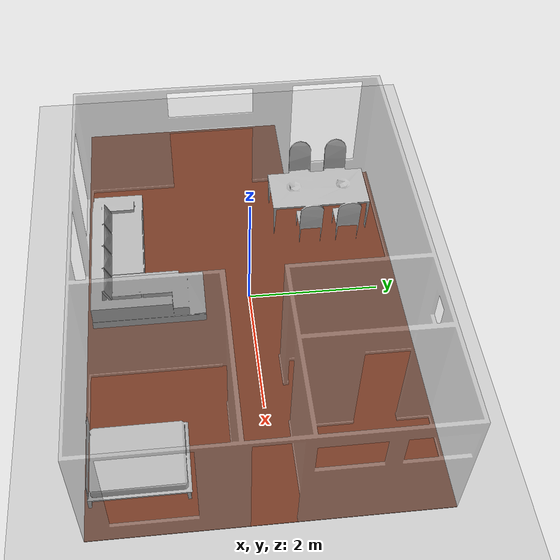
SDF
<sdf version="1.7">
  <world name="residential-unit">
    <!-- A ground plane -->
    <include>
      <uri>model://floor</uri>
    </include>
    <include>
      <uri>model://wall</uri>
    </include>
    <include>
      <uri>model://sofa</uri>
    </include>
    <include>
      <uri>model://table</uri>
    </include>
    <include>
      <uri>model://bed</uri>
    </include>
    <model name='ground_plane'>
      <static>1</static>
      <link name='link'>
        <collision name='collision'>
          <geometry>
            <plane>
              <normal>0 0 1</normal>
              <size>20 20</size>
            </plane>
          </geometry>
          <surface>
            <contact>
              <collide_bitmask>65535</collide_bitmask>
              <ode/>
            </contact>
            <friction>
              <ode>
                <mu>100</mu>
                <mu2>50</mu2>
              </ode>
              <torsional>
                <ode/>
              </torsional>
            </friction>
            <bounce/>
          </surface>
          <max_contacts>10</max_contacts>
        </collision>
        <visual name='visual'>
          <cast_shadows>0</cast_shadows>
          <geometry>
            <plane>
              <normal>0 0 1</normal>
              <size>20 20</size>
            </plane>
          </geometry>
          <material>
            <script>
              <uri>file://media/materials/scripts/gazebo.material</uri>
              <name>Gazebo/Grey</name>
            </script>
          </material>
        </visual>
        <self_collide>0</self_collide>
        <enable_wind>0</enable_wind>
        <kinematic>0</kinematic>
      </link>
    </model>

    <physics type="ode">
      <real_time_update_rate>1000.0</real_time_update_rate>
      <max_step_size>0.001</max_step_size>
      <real_time_factor>1</real_time_factor>
      <ode>
        <solver>
          <type>quick</type>
          <iters>150</iters>
          <precon_iters>0</precon_iters>
          <sor>1.400000</sor>
          <use_dynamic_moi_rescaling>1</use_dynamic_moi_rescaling>
        </solver>
        <constraints>
          <cfm>0.00001</cfm>
          <erp>0.2</erp>
          <contact_max_correcting_vel>2000.000000</contact_max_correcting_vel>
          <contact_surface_layer>0.01000</contact_surface_layer>
        </constraints>
      </ode>
    </physics>
    <gui fullscreen='0'>
      <camera name='user_camera'>
        <pose>0.245915 -0.00983 9.22896 5e-06 1.5698 1.56418</pose>
        <view_controller>orbit</view_controller>
        <projection_type>perspective</projection_type>
      </camera>
    </gui>
    <scene>
      <ambient>0.18 0.20 0.21 1</ambient>
      <background>0.0 0.0 0.0 1</background>
      <shadows>1</shadows>
      <grid>0</grid>
      <origin_visual>0</origin_visual>
    </scene>
    <light name='sun' type='directional'>
      <cast_shadows>0</cast_shadows>
      <pose>0 0 10 1.05819 -1.28631 0</pose>
      <diffuse>0.447 0.588 0.694 1</diffuse>
      <specular>0.12 0.12 0.12 1</specular>
      <attenuation>
        <range>10</range>
        <constant>0.9</constant>
        <linear>0.01</linear>
        <quadratic>0.001</quadratic>
      </attenuation>
      <direction>-0.5 0.1 -0.9</direction>
      <spot>
        <inner_angle>0</inner_angle>
        <outer_angle>0</outer_angle>
        <falloff>0</falloff>
      </spot>
    </light>
    <light name='user_point_light_0' type='point'>
      <pose>0.043403 0.097594 1 0 -0 0</pose>
      <diffuse>0.5 0.5 0.5 1</diffuse>
      <specular>0.1 0.1 0.1 1</specular>
      <attenuation>
        <range>7</range>
        <constant>0.45</constant>
        <linear>0.01</linear>
        <quadratic>0.001</quadratic>
      </attenuation>
      <cast_shadows>0</cast_shadows>
      <direction>0 0 -1</direction>
    </light>
  </world>

</sdf>

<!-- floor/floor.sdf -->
<sdf version="1.5">
  <model name="unit-floor">
    <static>true</static>
    <link name="link">
        <collision name="collision">
         <pose>0.0 0.0 0.015 0 0 0</pose>
         <geometry>
            <mesh>
                <uri>model://floor/meshes/floor_cols.stl</uri>
            </mesh>
        </geometry>
      </collision>
      <visual name="visual">
        <cast_shadows>false</cast_shadows>
        <pose>0.0 0.0 0.015 0 0 0</pose>
        <geometry>
          <mesh>
            <uri>model://floor/meshes/floor.dae</uri>
          </mesh>
        </geometry>
      </visual>
    </link>
  </model>
</sdf>

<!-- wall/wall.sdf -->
<sdf version="1.5">
  <model name="unit-walls">
    <static>true</static>
    <link name="link">
        <collision name="collision">
         <pose>0.0 0.0 0.015 0 0 0</pose>
         <geometry>
            <mesh>
                <uri>model://wall/meshes/walls_col.stl</uri>
            </mesh>
        </geometry>
      </collision>
      <visual name="visual">
        <cast_shadows>false</cast_shadows>
        <transparency>0.55</transparency>
        <pose>0.0 0.0 0.015 0 0 0</pose>
        <geometry>
            <mesh>
                <uri>model://wall/meshes/walls.dae</uri>
            </mesh>
        </geometry>
      </visual>
    </link>
  </model>
</sdf>

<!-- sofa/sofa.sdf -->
<sdf version="1.5">
  <model name="unit-sofa">
    <static>true</static>
    <link name="link">
      <collision name='collision_1'>
            <pose>-1.245 -1.985 0.2635 0 0 0 0</pose>
            <geometry>
              <box>
              <size>1.77 0.809 0.497</size>
            </box>
          </geometry>
      </collision>
      <collision name='collision_2'>
        <pose>0.0 -1.1 0.2635 0 0 0</pose>
        <geometry>
              <box>
              <size>0.902 0.809 0.497</size>
            </box>
          </geometry>
     </collision>
      <visual name="visual">
        <cast_shadows>true</cast_shadows>
        <pose>0.0 0.0 0.015 0 0 0 0</pose>
        <geometry>
            <mesh>
                <uri>model://sofa/meshes/sofa.dae</uri>
            </mesh>
        </geometry>
      </visual>
    </link>
  </model>
</sdf>

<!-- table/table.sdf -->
<sdf version="1.5">
  <model name="unit-table">
    <static>true</static>
    <link name="link">
      <collision name='collision'>
            <pose>-1.655 1.25 0.323 0 0 0 0</pose>
            <geometry>
              <box>
              <size>1.51 1.57 0.616</size>
            </box>
          </geometry>
      </collision>
      <visual name="visual">
        <cast_shadows>true</cast_shadows>
        <pose>0.0 0.0 0.015 0 0 0 0</pose>
        <geometry>
            <mesh>
                <uri>model://table/meshes/table.dae</uri>
            </mesh>
        </geometry>
      </visual>
    </link>
  </model>
</sdf>

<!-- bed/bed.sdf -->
<sdf version="1.5">
  <model name="unit-bed">
    <static>true</static>
    <link name="link">
      <collision name='collision'>
         <pose>2.75 -1.76 0.2635 0 0 0</pose>
         <geometry>
            <box>
            <size>1.05 1.35 0.497</size>
          </box>
        </geometry>
     </collision>
      <visual name="visual">
        <cast_shadows>true</cast_shadows>
        <geometry>
            <mesh>
                <uri>model://bed/meshes/bed.dae</uri>
            </mesh>
        </geometry>
      </visual>
    </link>
  </model>
</sdf>
